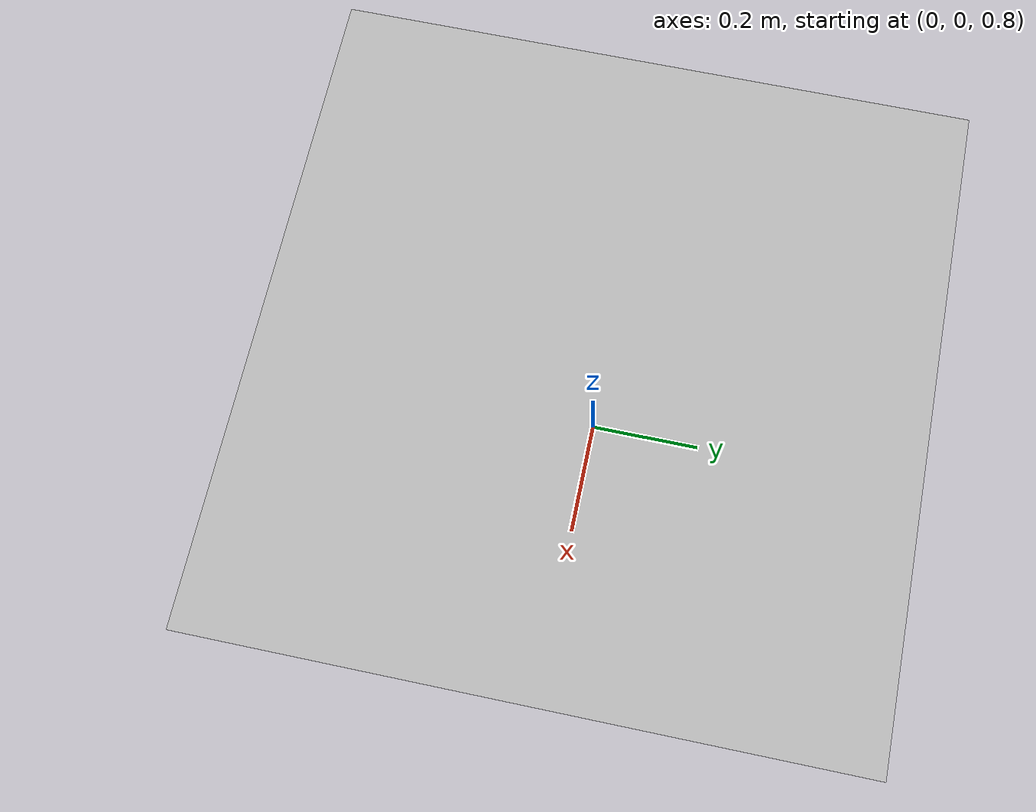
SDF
<?xml version="1.0" ?>
<sdf version="1.4">
  <model name="apriltag cube id2">
    <link name="link">
        <pose>0 0 1 1.5708 0 0</pose>
      <inertial>
<pose>0.0 0.0 0 0 -0 0</pose>
        <mass>1</mass>
      </inertial>
      <collision name="collision">
        <geometry>
          <mesh>
            <uri>model://apriltag_id2/meshes/apriltag_id2.dae</uri>
            <scale>1 0.5 1</scale>
          </mesh>
        </geometry>
          <surface>
            <bounce>
              <restitution_coefficient>0.5</restitution_coefficient>
              <threshold>0</threshold>
            </bounce>
            <contact>
              <ode>
                <max_vel>10</max_vel>
              </ode>
            </contact>
          </surface>
      </collision>
      <visual name="visual">
        <geometry>
          <mesh>
            <uri>model://apriltag_id2/meshes/apriltag_id2.dae</uri>
            <scale>1 0.5 1</scale>
          </mesh>
        </geometry>
      </visual>
    </link>
  </model>
</sdf>
